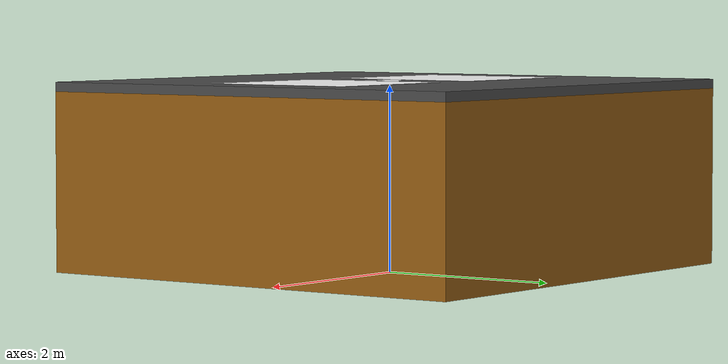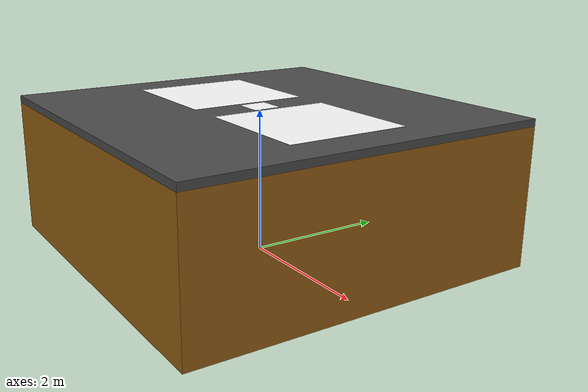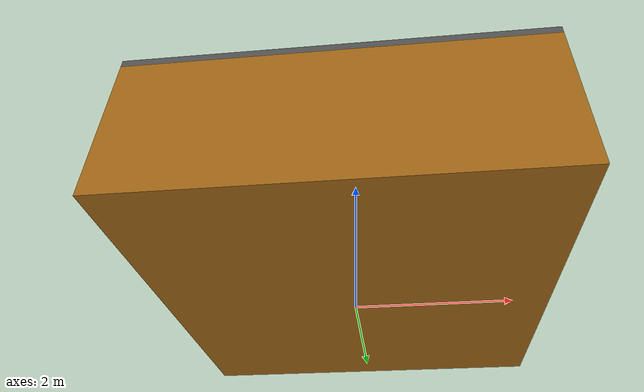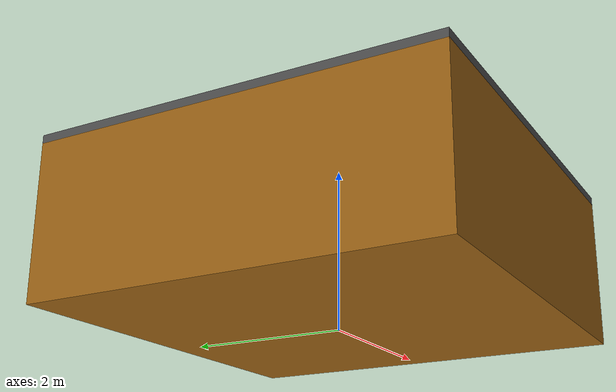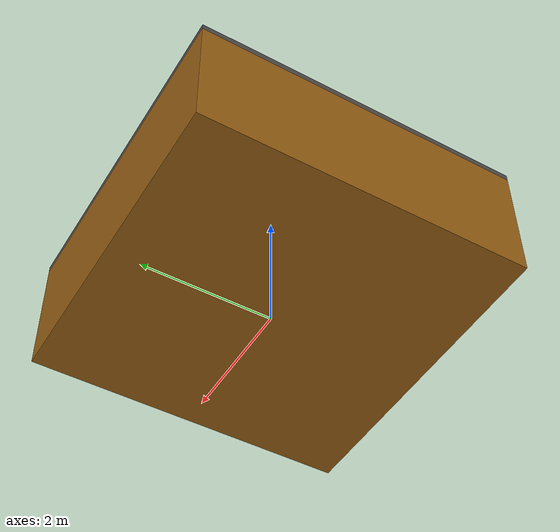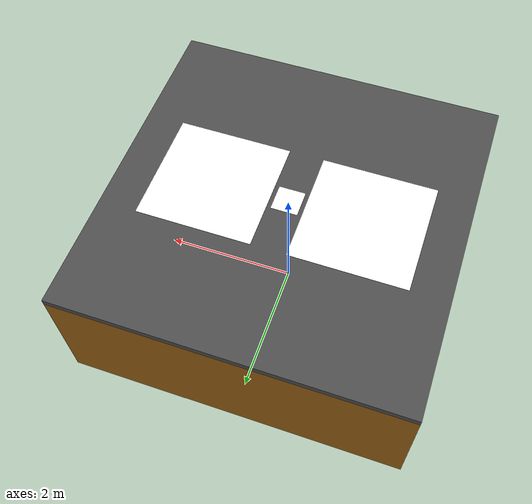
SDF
<?xml version="1.0" encoding="UTF-8"?>
<sdf version="1.9">
  <model name="moving_platform_aruco_velocity">
    <static>false</static>
    <self_collide>false</self_collide>
    <allow_auto_disable>false</allow_auto_disable>
    <link name="platform_link">
      <gravity>false</gravity>
      <visual name="body_visual">
        <pose>0 0 -1.0 0 0 0</pose>
        <geometry><box><size>5 5 1.9</size></box></geometry>
        <material>
          <ambient>0.55 0.32 0.05 1</ambient>
          <diffuse>0.6 0.38 0.08 1</diffuse>
          <specular>0.2 0.2 0.2 1</specular>
        </material>
      </visual>
      <collision name="body_collision">
        <pose>0 0 -1.0 0 0 0</pose>
        <geometry><box><size>5 5 1.9</size></box></geometry>
      </collision>
      <visual name="platform_visual">
        <geometry><box><size>5 5 0.1</size></box></geometry>
        <material>
          <ambient>0.3 0.3 0.3 1</ambient>
          <diffuse>0.3 0.3 0.3 1</diffuse>
          <specular>0.1 0.1 0.1 1</specular>
        </material>
      </visual>
      <collision name="platform_collision">
        <geometry><box><size>5 5 0.1</size></box></geometry>
      </collision>
      <visual name="aruco_visual">
        <pose>-1.1 0 0.051 0 0 0</pose>
        <geometry><plane><normal>0 0 1</normal><size>1.69 1.69</size></plane></geometry>
        <material>
          <ambient>1 1 1 1</ambient>
          <diffuse>1 1 1 1</diffuse>
          <specular>0 0 0 1</specular>
          <pbr><metal>
            <albedo_map>model://aruco_marker_0/materials/textures/aruco_0.png</albedo_map>
            <metalness>0.0</metalness>
            <roughness>1.0</roughness>
          </metal></pbr>
        </material>
      </visual>
      <visual name="aruco_visual_2">
        <pose>1.1 0 0.051 0 0 0</pose>
        <geometry><plane><normal>0 0 1</normal><size>1.69 1.69</size></plane></geometry>
        <material>
          <ambient>1 1 1 1</ambient>
          <diffuse>1 1 1 1</diffuse>
          <specular>0 0 0 1</specular>
          <pbr><metal>
            <albedo_map>model://aruco_marker_2/materials/textures/aruco_2.png</albedo_map>
            <metalness>0.0</metalness>
            <roughness>1.0</roughness>
          </metal></pbr>
        </material>
      </visual>
      <visual name="aruco_small_visual">
        <pose>0 0 0.0511 0 0 0</pose>
        <geometry><plane><normal>0 0 1</normal><size>0.39 0.39</size></plane></geometry>
        <material>
          <ambient>1 1 1 1</ambient>
          <diffuse>1 1 1 1</diffuse>
          <specular>0 0 0 1</specular>
          <pbr><metal>
            <albedo_map>model://aruco_marker_1/materials/textures/aruco_1.png</albedo_map>
            <metalness>0.0</metalness>
            <roughness>1.0</roughness>
          </metal></pbr>
        </material>
      </visual>
      <pose>0 0 2 0 0 0</pose>
      <inertial>
        <mass>10000</mass>
        <inertia>
          <ixx>10000</ixx><iyy>10000</iyy><izz>10000</izz>
        </inertia>
      </inertial>
    </link>
    <plugin filename="gz-sim-velocity-control-system"
            name="gz::sim::systems::VelocityControl">
      <topic>/model/trailer/cmd_vel</topic>
      <link_name>platform_link</link_name>
    </plugin>
    <plugin filename="gz-sim-odometry-publisher-system"
            name="gz::sim::systems::OdometryPublisher">
      <dimensions>3</dimensions>
      <odom_frame>world</odom_frame>
      <robot_base_frame>trailer/base_link</robot_base_frame>
      <odom_publish_frequency>50</odom_publish_frequency>
      <odom_topic>/model/trailer/odometry</odom_topic>
    </plugin>
  </model>
</sdf>
